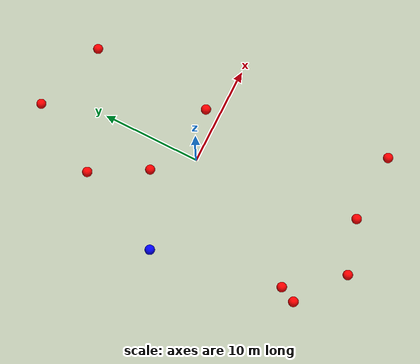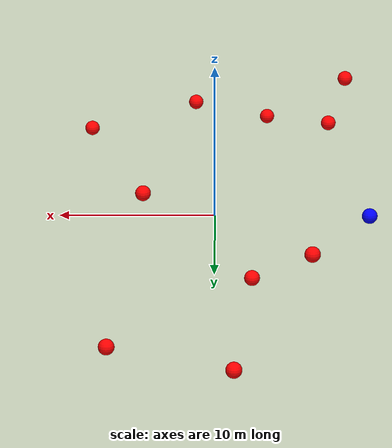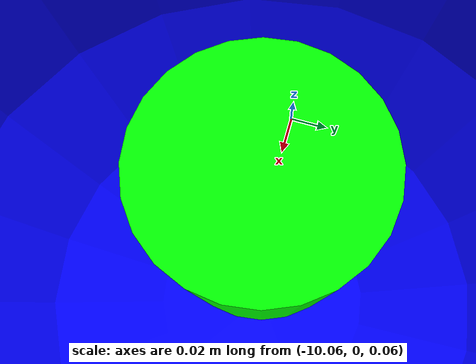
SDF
<?xml version="1.0" ?>
<sdf version="1.8">
    <world name="3d_world">
        <physics name="1ms" type="ode">
            <max_step_size>0.001</max_step_size>
            <real_time_factor>1.0</real_time_factor>
            <real_time_update_rate>1000.0</real_time_update_rate>
        </physics>
        <gravity>0 0 0</gravity>

        <plugin
            filename="gz-sim-physics-system"
            name="gz::sim::v8::systems::Physics">
        </plugin>
        <plugin
            filename="libignition-gazebo-user-commands-system.so"
            name="ignition::gazebo::systems::UserCommands">
        </plugin>
        <plugin
            filename="gz-sim-scene-broadcaster-system"
            name="gz::sim::systems::SceneBroadcaster">
        </plugin>
        <plugin
            filename="gz-sim-sensors-system"
            name="gz::sim::systems::Sensors">
            <render_engine>ogre2</render_engine>
        </plugin>

        <light type="directional" name="sun">
            <cast_shadows>true</cast_shadows>
            <pose>0 0 10 0 0 0</pose>
            <diffuse>0.8 0.8 0.8 1</diffuse>
            <specular>0.2 0.2 0.2 1</specular>
            <attenuation>
                <range>1000</range>
                <constant>0.9</constant>
                <linear>0.01</linear>
                <quadratic>0.001</quadratic>
            </attenuation>
            <direction>-0.5 0.1 -0.9</direction>
        </light>

        <!-- AGENTE -->
        <model name='agente' canonical_link='chassis'>
            <pose relative_to='world'>-10.0 0 0.0 0 0 0</pose>
            <link name='chassis'>
                <pose relative_to='__model__'>0.0 0 0.0 0 0 0</pose>
                <inertial>
                    <mass>1.14395</mass>
                    <inertia>
                        <ixx>0.095329</ixx>
                        <ixy>0</ixy>
                        <ixz>0</ixz>
                        <iyy>0.381317</iyy>
                        <iyz>0</iyz>
                        <izz>0.476646</izz>
                    </inertia>
                </inertial>
                <visual name='visual'>
                    <geometry>
                        <sphere>
                            <radius>0.5</radius>
                        </sphere>
                    </geometry>
                    <material>
                        <ambient>0.0 0.0 1.0 1</ambient>
                        <diffuse>0.0 0.0 1.0 1</diffuse>
                        <specular>0.0 0.0 1.0 1</specular>
                    </material>
                </visual>
                <collision name='collision'>
                    <geometry>
                        <sphere>
                            <radius>0.5</radius>
                        </sphere>
                    </geometry>
                </collision>
                <enable_gravity>false</enable_gravity>
            </link>

            <link name='lidar_link'>
                <pose relative_to='chassis'>0.0 0 0.1 0 0 0</pose>
                <inertial>
                    <mass>0.1</mass>
                    <inertia>
                        <ixx>0.000166667</ixx>
                        <iyy>0.000166667</iyy>
                        <izz>0.000166667</izz>
                    </inertia>
                </inertial>
                <collision name='collision'>
                    <geometry>
                        <cylinder>
                            <radius>0.05</radius>
                            <length>0.1</length>
                        </cylinder>
                    </geometry>
                </collision>
                <visual name='visual'>
                    <geometry>
                        <cylinder>
                            <radius>0.05</radius>
                            <length>0.1</length>
                        </cylinder>
                    </geometry>
                    <material>
                        <ambient>0.0 1.0 0.0 1</ambient>
                        <diffuse>0.0 1.0 0.0 1</diffuse>
                        <specular>0.0 1.0 0.0 1</specular>
                    </material>
                </visual>
                <sensor name="lidar" type="gpu_lidar">
                    <topic>scan</topic>
                    <update_rate>10</update_rate>
                    <lidar>
                        <scan>
                            <horizontal>
                                <samples>5000</samples>
                                <resolution>1</resolution>
                                <min_angle>-3.14159</min_angle>
                                <max_angle>3.14159</max_angle>
                            </horizontal>
                        </scan>
                        <range>
                            <min>0.1</min>
                            <max>10.0</max>
                            <resolution>0.01</resolution>
                        </range>
                    </lidar>
                    <visualize>true</visualize>
                    <always_on>true</always_on>
                    <update_rate>10</update_rate>
                    <pose_frame>lidar</pose_frame>
                </sensor>
                <enable_gravity>false</enable_gravity>
            </link>

            <joint name="lidar_joint" type="fixed">
                <parent>chassis</parent>
                <child>lidar_link</child>
            </joint>

            <plugin
                filename="ignition-gazebo-joint-state-publisher-system"
                name="ignition::gazebo::systems::JointStatePublisher">
            </plugin>
            <plugin
                filename="ignition-gazebo-odometry-publisher-system"
                name="ignition::gazebo::systems::OdometryPublisher">
                <dimensions>3</dimensions>
            </plugin>
            <plugin
                filename="ignition-gazebo-velocity-control-system"
                name="ignition::gazebo::systems::VelocityControl">
                <initial_linear>0.0 0 0</initial_linear>
                <initial_angular>0 0 0.0</initial_angular>
            </plugin>
            <plugin
                filename="libignition-gazebo-pose-publisher-system.so"
                name="ignition::gazebo::systems::PosePublisher">
                <topic>/agente/pose</topic>
                <frame_id>agente</frame_id>
                <update_rate>30</update_rate>
            </plugin>
        </model>

        <!-- OBSTACLE 1 -->
        <model name='obstacle_1' canonical_link='obstacle'>
            <static>false</static>
            <pose relative_to='world'>-2.38 3.98 -2.70 0 0 0</pose>
            <link name='obstacle'>
                <pose relative_to='__model__'>0.0 0 0.0 0 0 0</pose>
                <visual name='visual'>
                    <geometry>
                        <sphere>
                            <radius>0.50</radius>
                        </sphere>
                    </geometry>
                    <material>
                        <ambient>1.0 0.0 0.0 1</ambient>
                        <diffuse>1.0 0.0 0.0 1</diffuse>
                        <specular>1.0 0.0 0.0 1</specular>
                    </material>
                </visual>
                <collision name='collision'>
                    <geometry>
                        <sphere>
                            <radius>0.50</radius>
                        </sphere>
                    </geometry>
                </collision>
                <enable_gravity>false</enable_gravity>
            </link>

            <plugin
                filename="ignition-gazebo-velocity-control-system"
                name="ignition::gazebo::systems::VelocityControl">
                <initial_linear>-0.36 -1.49 1.01</initial_linear>
                <initial_angular>0 0 0</initial_angular>
            </plugin>

            <plugin
                filename="ignition-gazebo-odometry-publisher-system"
                name="ignition::gazebo::systems::OdometryPublisher">
                <dimensions>3</dimensions>
            </plugin>
        </model>

        <!-- OBSTACLE 2 -->
        <model name='obstacle_2' canonical_link='obstacle'>
            <static>false</static>
            <pose relative_to='world'>4.58 1.23 2.00 0 0 0</pose>
            <link name='obstacle'>
                <pose relative_to='__model__'>0.0 0 0.0 0 0 0</pose>
                <visual name='visual'>
                    <geometry>
                        <sphere>
                            <radius>0.50</radius>
                        </sphere>
                    </geometry>
                    <material>
                        <ambient>1.0 0.0 0.0 1</ambient>
                        <diffuse>1.0 0.0 0.0 1</diffuse>
                        <specular>1.0 0.0 0.0 1</specular>
                    </material>
                </visual>
                <collision name='collision'>
                    <geometry>
                        <sphere>
                            <radius>0.50</radius>
                        </sphere>
                    </geometry>
                </collision>
                <enable_gravity>false</enable_gravity>
            </link>

            <plugin
                filename="ignition-gazebo-velocity-control-system"
                name="ignition::gazebo::systems::VelocityControl">
                <initial_linear>-1.93 -0.28 -0.46</initial_linear>
                <initial_angular>0 0 0</initial_angular>
            </plugin>

            <plugin
                filename="ignition-gazebo-odometry-publisher-system"
                name="ignition::gazebo::systems::OdometryPublisher">
                <dimensions>3</dimensions>
            </plugin>
        </model>

        <!-- OBSTACLE 3 -->
        <model name='obstacle_3' canonical_link='obstacle'>
            <static>false</static>
            <pose relative_to='world'>-6.01 8.89 0.88 0 0 0</pose>
            <link name='obstacle'>
                <pose relative_to='__model__'>0.0 0 0.0 0 0 0</pose>
                <visual name='visual'>
                    <geometry>
                        <sphere>
                            <radius>0.50</radius>
                        </sphere>
                    </geometry>
                    <material>
                        <ambient>1.0 0.0 0.0 1</ambient>
                        <diffuse>1.0 0.0 0.0 1</diffuse>
                        <specular>1.0 0.0 0.0 1</specular>
                    </material>
                </visual>
                <collision name='collision'>
                    <geometry>
                        <sphere>
                            <radius>0.50</radius>
                        </sphere>
                    </geometry>
                </collision>
                <enable_gravity>false</enable_gravity>
            </link>

            <plugin
                filename="ignition-gazebo-velocity-control-system"
                name="ignition::gazebo::systems::VelocityControl">
                <initial_linear>1.55 -1.26 -0.13</initial_linear>
                <initial_angular>0 0 0</initial_angular>
            </plugin>

            <plugin
                filename="ignition-gazebo-odometry-publisher-system"
                name="ignition::gazebo::systems::OdometryPublisher">
                <dimensions>3</dimensions>
            </plugin>
        </model>

        <!-- OBSTACLE 4 -->
        <model name='obstacle_4' canonical_link='obstacle'>
            <static>false</static>
            <pose relative_to='world'>6.45 14.46 -2.87 0 0 0</pose>
            <link name='obstacle'>
                <pose relative_to='__model__'>0.0 0 0.0 0 0 0</pose>
                <visual name='visual'>
                    <geometry>
                        <sphere>
                            <radius>0.50</radius>
                        </sphere>
                    </geometry>
                    <material>
                        <ambient>1.0 0.0 0.0 1</ambient>
                        <diffuse>1.0 0.0 0.0 1</diffuse>
                        <specular>1.0 0.0 0.0 1</specular>
                    </material>
                </visual>
                <collision name='collision'>
                    <geometry>
                        <sphere>
                            <radius>0.50</radius>
                        </sphere>
                    </geometry>
                </collision>
                <enable_gravity>false</enable_gravity>
            </link>

            <plugin
                filename="ignition-gazebo-velocity-control-system"
                name="ignition::gazebo::systems::VelocityControl">
                <initial_linear>-0.72 -1.83 0.36</initial_linear>
                <initial_angular>0 0 0</initial_angular>
            </plugin>

            <plugin
                filename="ignition-gazebo-odometry-publisher-system"
                name="ignition::gazebo::systems::OdometryPublisher">
                <dimensions>3</dimensions>
            </plugin>
        </model>

        <!-- OBSTACLE 5 -->
        <model name='obstacle_5' canonical_link='obstacle'>
            <static>false</static>
            <pose relative_to='world'>1.34 -16.68 2.17 0 0 0</pose>
            <link name='obstacle'>
                <pose relative_to='__model__'>0.0 0 0.0 0 0 0</pose>
                <visual name='visual'>
                    <geometry>
                        <sphere>
                            <radius>0.50</radius>
                        </sphere>
                    </geometry>
                    <material>
                        <ambient>1.0 0.0 0.0 1</ambient>
                        <diffuse>1.0 0.0 0.0 1</diffuse>
                        <specular>1.0 0.0 0.0 1</specular>
                    </material>
                </visual>
                <collision name='collision'>
                    <geometry>
                        <sphere>
                            <radius>0.50</radius>
                        </sphere>
                    </geometry>
                </collision>
                <enable_gravity>false</enable_gravity>
            </link>

            <plugin
                filename="ignition-gazebo-velocity-control-system"
                name="ignition::gazebo::systems::VelocityControl">
                <initial_linear>0.25 1.97 -0.26</initial_linear>
                <initial_angular>0 0 0</initial_angular>
            </plugin>

            <plugin
                filename="ignition-gazebo-odometry-publisher-system"
                name="ignition::gazebo::systems::OdometryPublisher">
                <dimensions>3</dimensions>
            </plugin>
        </model>

        <!-- OBSTACLE 6 -->
        <model name='obstacle_6' canonical_link='obstacle'>
            <static>false</static>
            <pose relative_to='world'>-3.67 -18.29 0.58 0 0 0</pose>
            <link name='obstacle'>
                <pose relative_to='__model__'>0.0 0 0.0 0 0 0</pose>
                <visual name='visual'>
                    <geometry>
                        <sphere>
                            <radius>0.50</radius>
                        </sphere>
                    </geometry>
                    <material>
                        <ambient>1.0 0.0 0.0 1</ambient>
                        <diffuse>1.0 0.0 0.0 1</diffuse>
                        <specular>1.0 0.0 0.0 1</specular>
                    </material>
                </visual>
                <collision name='collision'>
                    <geometry>
                        <sphere>
                            <radius>0.50</radius>
                        </sphere>
                    </geometry>
                </collision>
                <enable_gravity>false</enable_gravity>
            </link>

            <plugin
                filename="ignition-gazebo-velocity-control-system"
                name="ignition::gazebo::systems::VelocityControl">
                <initial_linear>0.43 1.95 -0.06</initial_linear>
                <initial_angular>0 0 0</initial_angular>
            </plugin>

            <plugin
                filename="ignition-gazebo-odometry-publisher-system"
                name="ignition::gazebo::systems::OdometryPublisher">
                <dimensions>3</dimensions>
            </plugin>
        </model>

        <!-- OBSTACLE 7 -->
        <model name='obstacle_7' canonical_link='obstacle'>
            <static>false</static>
            <pose relative_to='world'>8.66 -16.77 0.19 0 0 0</pose>
            <link name='obstacle'>
                <pose relative_to='__model__'>0.0 0 0.0 0 0 0</pose>
                <visual name='visual'>
                    <geometry>
                        <sphere>
                            <radius>0.50</radius>
                        </sphere>
                    </geometry>
                    <material>
                        <ambient>1.0 0.0 0.0 1</ambient>
                        <diffuse>1.0 0.0 0.0 1</diffuse>
                        <specular>1.0 0.0 0.0 1</specular>
                    </material>
                </visual>
                <collision name='collision'>
                    <geometry>
                        <sphere>
                            <radius>0.50</radius>
                        </sphere>
                    </geometry>
                </collision>
                <enable_gravity>false</enable_gravity>
            </link>

            <plugin
                filename="ignition-gazebo-velocity-control-system"
                name="ignition::gazebo::systems::VelocityControl">
                <initial_linear>-1.11 1.66 -0.02</initial_linear>
                <initial_angular>0 0 0</initial_angular>
            </plugin>

            <plugin
                filename="ignition-gazebo-odometry-publisher-system"
                name="ignition::gazebo::systems::OdometryPublisher">
                <dimensions>3</dimensions>
            </plugin>
        </model>

        <!-- OBSTACLE 8 -->
        <model name='obstacle_8' canonical_link='obstacle'>
            <static>false</static>
            <pose relative_to='world'>-8.97 -14.83 4.52 0 0 0</pose>
            <link name='obstacle'>
                <pose relative_to='__model__'>0.0 0 0.0 0 0 0</pose>
                <visual name='visual'>
                    <geometry>
                        <sphere>
                            <radius>0.50</radius>
                        </sphere>
                    </geometry>
                    <material>
                        <ambient>1.0 0.0 0.0 1</ambient>
                        <diffuse>1.0 0.0 0.0 1</diffuse>
                        <specular>1.0 0.0 0.0 1</specular>
                    </material>
                </visual>
                <collision name='collision'>
                    <geometry>
                        <sphere>
                            <radius>0.50</radius>
                        </sphere>
                    </geometry>
                </collision>
                <enable_gravity>false</enable_gravity>
            </link>

            <plugin
                filename="ignition-gazebo-velocity-control-system"
                name="ignition::gazebo::systems::VelocityControl">
                <initial_linear>1.28 1.47 -0.45</initial_linear>
                <initial_angular>0 0 0</initial_angular>
            </plugin>

            <plugin
                filename="ignition-gazebo-odometry-publisher-system"
                name="ignition::gazebo::systems::OdometryPublisher">
                <dimensions>3</dimensions>
            </plugin>
        </model>

        <!-- OBSTACLE 9 -->
        <model name='obstacle_9' canonical_link='obstacle'>
            <static>false</static>
            <pose relative_to='world'>-1.17 16.99 -3.22 0 0 0</pose>
            <link name='obstacle'>
                <pose relative_to='__model__'>0.0 0 0.0 0 0 0</pose>
                <visual name='visual'>
                    <geometry>
                        <sphere>
                            <radius>0.50</radius>
                        </sphere>
                    </geometry>
                    <material>
                        <ambient>1.0 0.0 0.0 1</ambient>
                        <diffuse>1.0 0.0 0.0 1</diffuse>
                        <specular>1.0 0.0 0.0 1</specular>
                    </material>
                </visual>
                <collision name='collision'>
                    <geometry>
                        <sphere>
                            <radius>0.50</radius>
                        </sphere>
                    </geometry>
                </collision>
                <enable_gravity>false</enable_gravity>
            </link>

            <plugin
                filename="ignition-gazebo-velocity-control-system"
                name="ignition::gazebo::systems::VelocityControl">
                <initial_linear>0.28 -1.95 0.37</initial_linear>
                <initial_angular>0 0 0</initial_angular>
            </plugin>

            <plugin
                filename="ignition-gazebo-odometry-publisher-system"
                name="ignition::gazebo::systems::OdometryPublisher">
                <dimensions>3</dimensions>
            </plugin>
        </model>

        <!-- OBSTACLE 10 -->
        <model name='obstacle_10' canonical_link='obstacle'>
            <static>false</static>
            <pose relative_to='world'>-7.80 -13.15 1.84 0 0 0</pose>
            <link name='obstacle'>
                <pose relative_to='__model__'>0.0 0 0.0 0 0 0</pose>
                <visual name='visual'>
                    <geometry>
                        <sphere>
                            <radius>0.50</radius>
                        </sphere>
                    </geometry>
                    <material>
                        <ambient>1.0 0.0 0.0 1</ambient>
                        <diffuse>1.0 0.0 0.0 1</diffuse>
                        <specular>1.0 0.0 0.0 1</specular>
                    </material>
                </visual>
                <collision name='collision'>
                    <geometry>
                        <sphere>
                            <radius>0.50</radius>
                        </sphere>
                    </geometry>
                </collision>
                <enable_gravity>false</enable_gravity>
            </link>

            <plugin
                filename="ignition-gazebo-velocity-control-system"
                name="ignition::gazebo::systems::VelocityControl">
                <initial_linear>1.04 1.69 -0.24</initial_linear>
                <initial_angular>0 0 0</initial_angular>
            </plugin>

            <plugin
                filename="ignition-gazebo-odometry-publisher-system"
                name="ignition::gazebo::systems::OdometryPublisher">
                <dimensions>3</dimensions>
            </plugin>
        </model>

    </world>
</sdf>
